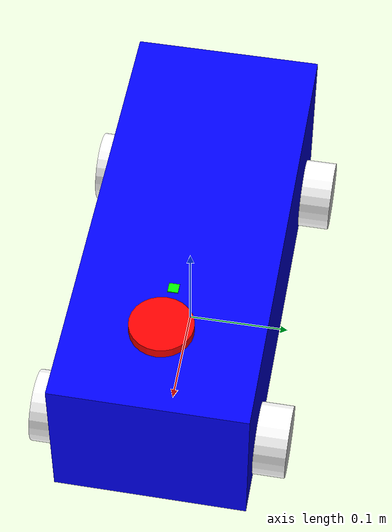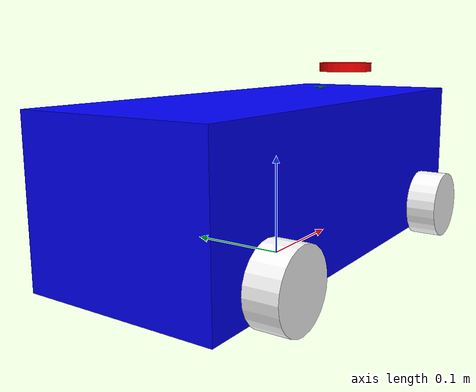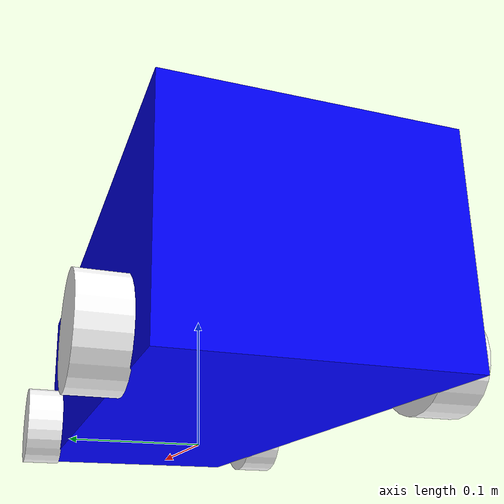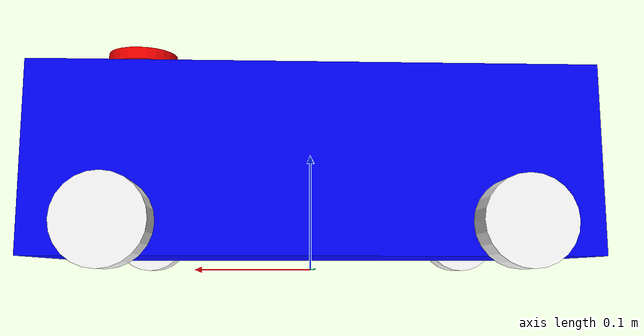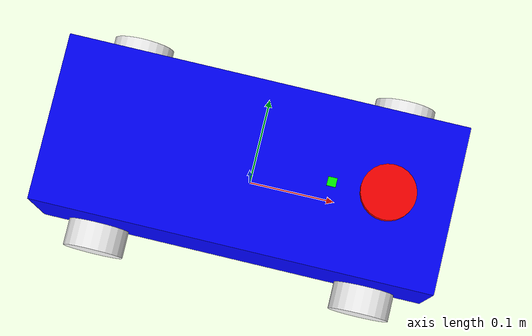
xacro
<?xml version="1.0"?>
<robot xmlns:xacro="http://www.ros.org/wiki/xacro" name="zzangdol_ai_car">
  <!-- ****************** ROBOT CONSTANTS *******************************  -->
  <xacro:property name="TRUE" value="true" />
  <xacro:property name="FALSE" value="false" />
  <xacro:property name="M_PI" value="3.1415926535897931" />
  <!-- base_width = 0.185m, base_length = 0.445 ~ 0.45m, base_height = 0.15m -->
  <xacro:property name="base_width" value="0.185"/>
  <xacro:property name="base_length" value="0.445"/>
  <xacro:property name="base_height" value="0.15"/>

  <!-- Define the shape of the robot's wheels in meters -->
  <!-- wheel_radius = 0.0315 ~ 0.0381m wheel_width = 0.0254 ~ 0.0381m  -->
  <xacro:property name="wheel_radius" value="0.0348"/>
  <xacro:property name="wheel_width" value="0.0317"/>

  <!-- x-axis points forward, y-axis points to left, z-axis points upwards -->
  <!-- Define the gap between the wheel and chassis along y-axis in meters -->
  <xacro:property name="wheel_ygap" value="0.015"/>

  <!-- Position the wheels along the z-axis -->
  <xacro:property name="wheel_zoff" value="0.05"/>

  <!-- Position the wheels along the x-axis -->
  <xacro:property name="wheel_xoff" value="0.155"/>

  <!-- Inertial property macros  -->
  <xacro:macro name="box_inertia" params="m w h d">
    <inertial>
      <origin xyz="0 0 0" rpy="${pi/2} 0 ${pi/2}"/>
      <mass value="${m}"/>
      <inertia ixx="${(m/12) * (h*h + d*d)}" ixy="0.0" ixz="0.0" iyy="${(m/12) * (w*w + d*d)}" iyz="0.0" izz="${(m/12) * (w*w + h*h)}"/>
    </inertial>
  </xacro:macro>

  <xacro:macro name="cylinder_inertia" params="m r h">
    <inertial>
      <origin xyz="0 0 0" rpy="${pi/2} 0 0" />
      <mass value="${m}"/>
      <inertia ixx="${(m/12) * (3*r*r + h*h)}" ixy = "0" ixz = "0" iyy="${(m/12) * (3*r*r + h*h)}" iyz = "0" izz="${(m/2) * (r*r)}"/>
    </inertial>
  </xacro:macro>

  <xacro:macro name="sphere_inertia" params="m r">
    <inertial>
      <mass value="${m}"/>
      <inertia ixx="${(2/5) * m * (r*r)}" ixy="0.0" ixz="0.0" iyy="${(2/5) * m * (r*r)}" iyz="0.0" izz="${(2/5) * m * (r*r)}"/>
    </inertial>
  </xacro:macro>

  <!-- ****************** ROBOT BASE FOOTPRINT ***************************  -->
  <!-- Define the center of the main robot chassis projected on the ground -->
  <link name="base_footprint">
    <origin xyz="0 0 0" rpy="0 0 0"/>
  </link>

  <!-- The base footprint of the robot is located underneath the chassis -->
  <joint name="base_joint" type="fixed">
    <parent link="base_footprint"/>
    <child link="base_link" />
    <origin xyz="0 0 ${(wheel_radius+wheel_zoff)}" rpy="0 0 0"/>
  </joint>

  <!-- Body -->
  <link name="base_link">
    <visual>
      <geometry>
        <box size="${base_length} ${base_width} ${base_height}"/>
      </geometry>
      <material name="blue">
        <color rgba="0 0 1 1"/>
      </material>
    </visual>
  </link>
  <!-- *********************** DRIVE WHEELS ******************************  -->
  <xacro:macro name="wheel" params="prefix x_reflect y_reflect steering driving">
    <link name="${prefix}_link">
      <visual>
        <origin xyz="0 0 0" rpy="${M_PI/2} 0 0"/>
        <geometry>
            <cylinder radius="${wheel_radius}" length="${wheel_width}"/>
        </geometry>
        <material name="White">
          <color rgba="${255/255} ${255/255} ${255/255} 1.0"/>
        </material>
      </visual>

    </link>
    <xacro:if value="${driving}">
      <joint name="${prefix}_driving_joint" type="revolute">
        <parent link="base_link"/>
        <child link="${prefix}_link"/>
        <origin xyz="${x_reflect*wheel_xoff} ${y_reflect*(base_width/2+wheel_ygap)} ${-wheel_zoff}" rpy="0 0 0"/>
        <limit upper="3.1415" lower="-3.1415" effort="30" velocity="5.0"/>
        <axis xyz="0 1 0"/>
      </joint>
    </xacro:if>

    <!-- Steering (45 ~ -45 degree)-->
    <xacro:if value="${steering}">
      <joint name="${prefix}_steering_joint" type="revolute">
        <parent link="base_link"/>
        <child link="${prefix}_link"/>
        <origin xyz="${x_reflect*wheel_xoff} ${y_reflect*(base_width/2+wheel_ygap)} ${-wheel_zoff}" rpy="0 0 0"/>
        <limit upper="0.7854" lower="-0.7854" effort="10" velocity="1.0"/>
        <axis xyz="0 0 1"/>
      </joint>
    </xacro:if>
  </xacro:macro>
  <!-- front wheels -->
  <xacro:wheel prefix="fwheel_l" x_reflect="1" y_reflect="1" steering="${TRUE}" driving="${FALSE}"/>
  <xacro:wheel prefix="fwheel_r" x_reflect="1" y_reflect="-1" steering="${TRUE}" driving="${FALSE}"/>
  <!-- rear wheels -->
  <xacro:wheel prefix="rwheel_l" x_reflect="-1" y_reflect="1" steering="${FALSE}" driving="${TRUE}"/>
  <xacro:wheel prefix="rwheel_r" x_reflect="-1" y_reflect="-1" steering="${FALSE}" driving="${TRUE}"/>

  <!-- Lidar Sensor -->
  <link name="lidar_link">
    <visual>
      <geometry>
        <cylinder radius="0.03" length="0.01"/>
      </geometry>
      <material name="red">
        <color rgba="1 0 0 1"/>
      </material>
    </visual>
  </link>
  <joint name="lidar_joint" type="fixed">
    <origin xyz="0.15 0 0.1" rpy="0 0 ${M_PI}"/>
    <parent link="base_link"/>
    <child link="lidar_link"/>
  </joint>

  <!-- IMU -->
  <link name="imu_link">
    <visual>
      <geometry>
        <box size="0.01 0.01 0.001"/>
      </geometry>
      <material name="green">
        <color rgba="0 1 0 1"/>
      </material>
    </visual>
  </link>
  <joint name="imu_joint" type="fixed">
    <origin xyz="0.09 0 0.08" rpy="0 0 0"/>
    <parent link="base_link"/>
    <child link="imu_link"/>
  </joint>
</robot>
